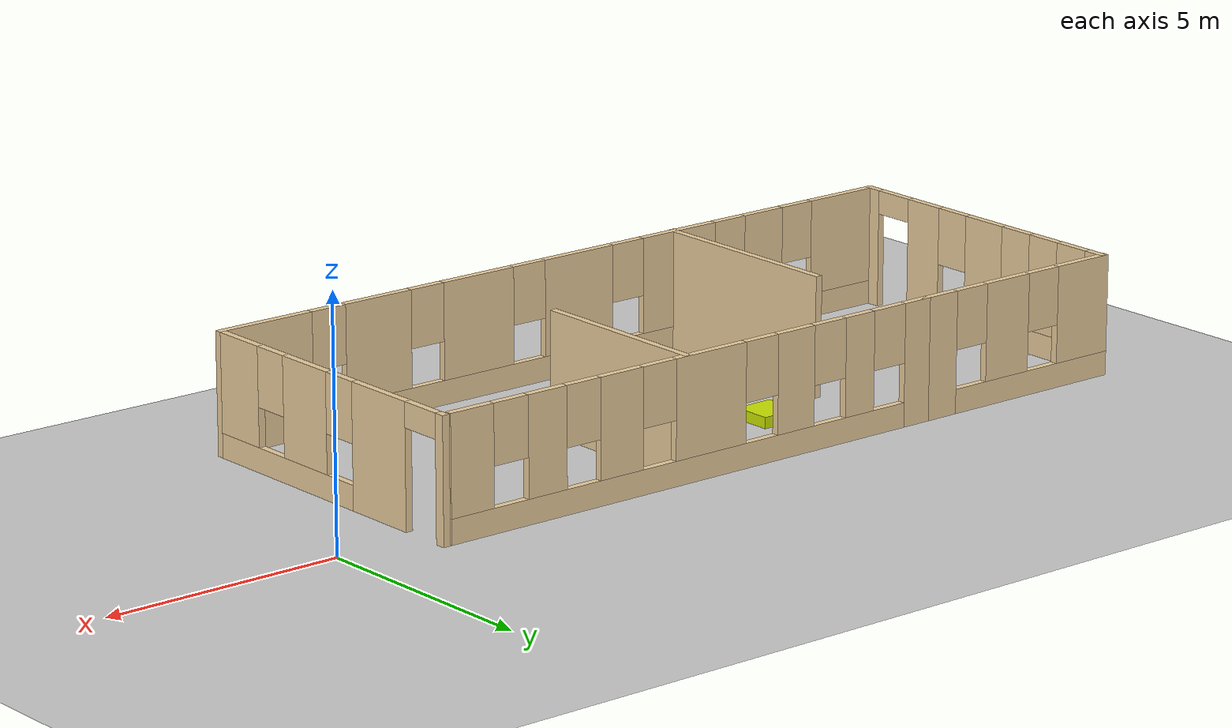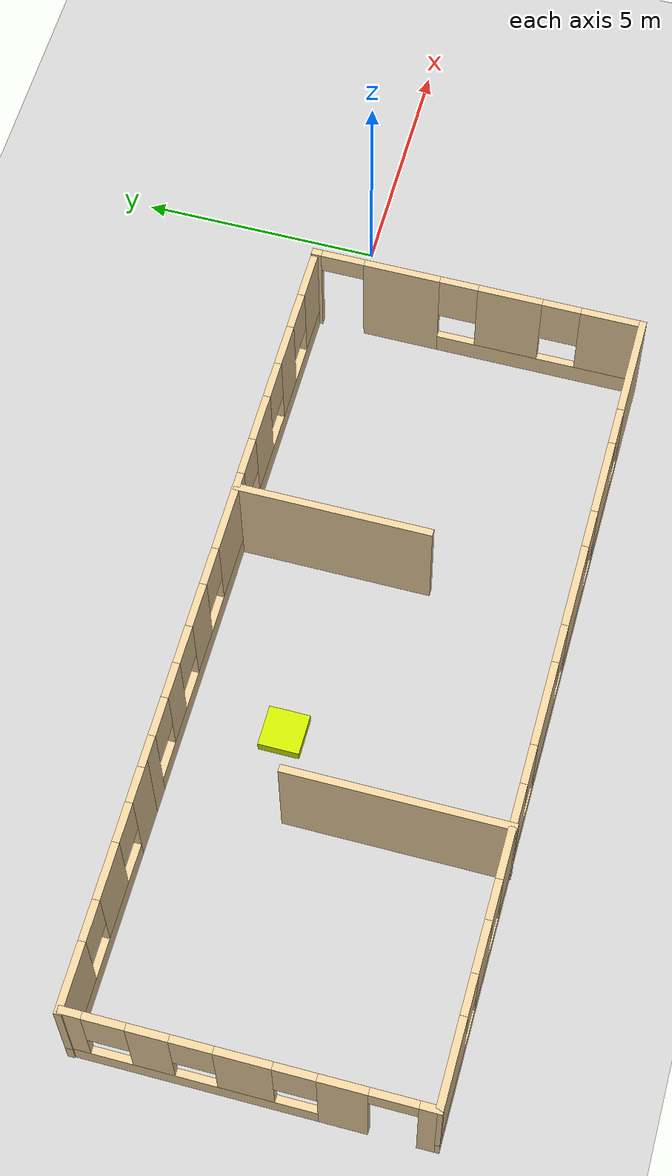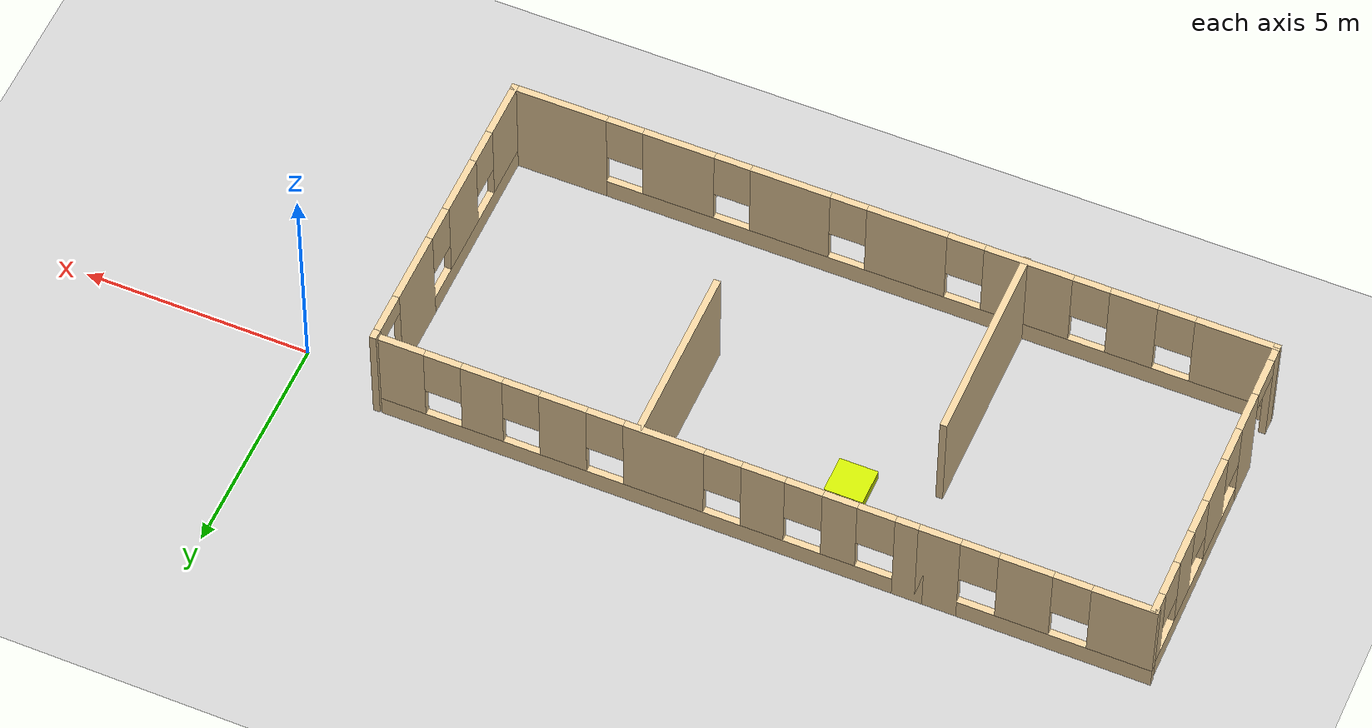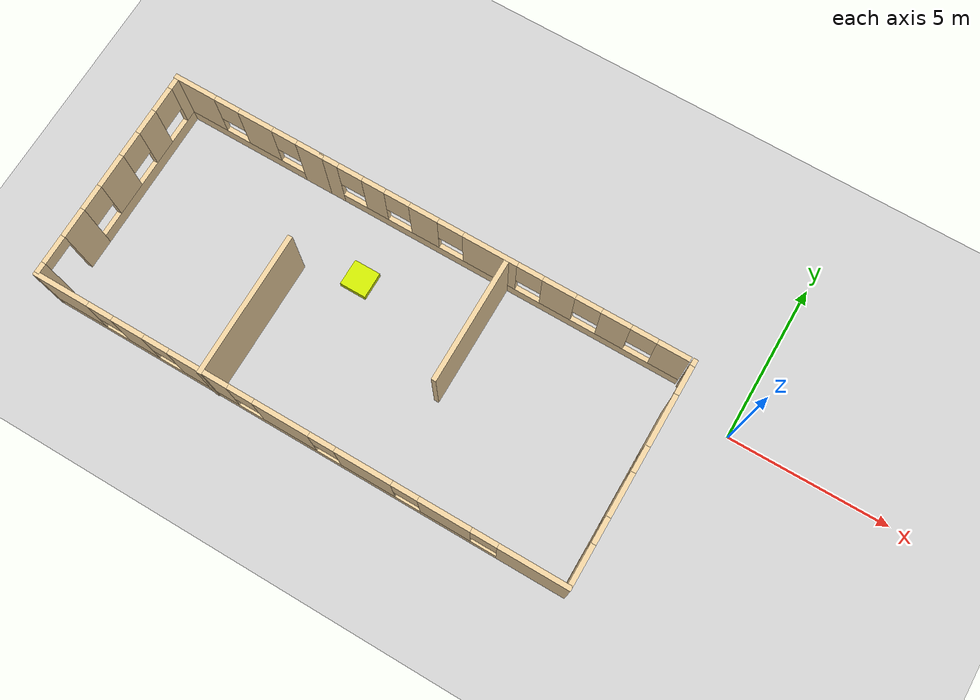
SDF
<sdf version="1.6">
 <world name="default">
  <light name="sun" type="directional">
   <pose>0 0 10 0 -0 0</pose>
   <diffuse>0.8 0.8 0.8 1</diffuse>
   <specular>0.2 0.2 0.2 1</specular>
   <attenuation>
    <range>1000</range>
    <constant>0.9</constant>
    <linear>0.01</linear>
    <quadratic>0.001</quadratic>
   </attenuation>
   <direction>-0.5 0.1 -0.9</direction>
  </light>
  <model name="ground_plane">
   <static>1</static>
   <link name="link">
    <collision name="collision">
     <geometry><plane><normal>0 0 1</normal><size>100 100</size></plane></geometry>
     <surface>
      <contact><collide_bitmask>65535</collide_bitmask></contact>
      <friction><ode><mu>100</mu><mu2>50</mu2></ode></friction>
     </surface>
    </collision>
    <visual name="visual">
     <cast_shadows>0</cast_shadows>
     <geometry><plane><normal>0 0 1</normal><size>100 100</size></plane></geometry>
     <material>
      <script><uri>file://media/materials/scripts/gazebo.material</uri><name>Gazebo/Grey</name></script>
     </material>
    </visual>
   </link>
  </model>
  <gravity>0 0 -9.8</gravity>
  <magnetic_field>6e-06 2.3e-05 -4.2e-05</magnetic_field>
  <atmosphere type="adiabatic"/>
  <physics name="default_physics" default="0" type="ode">
   <max_step_size>0.001</max_step_size>
   <real_time_factor>1</real_time_factor>
   <real_time_update_rate>1000</real_time_update_rate>
  </physics>
  <scene><ambient>0.4 0.4 0.4 1</ambient><background>0.7 0.7 0.7 1</background><shadows>1</shadows></scene>
  <audio><device>default</device></audio>
  <spherical_coordinates>
   <surface_model>EARTH_WGS84</surface_model>
   <latitude_deg>0</latitude_deg>
   <longitude_deg>0</longitude_deg>
   <elevation>0</elevation>
   <heading_deg>0</heading_deg>
  </spherical_coordinates>
  <model name="test_room">
   <pose>-10.2028 -2.74088 0 0 -0 0</pose>
   <link name="Wall_0">
    <pose>2.32553 3.42841 0 0 -0 0</pose>
    <visual name="Wall_0_Visual_0">
     <pose>-5.55003 0 1.25 0 -0 0</pose>
     <geometry><box><size>0.649941 0.15 2.5</size></box></geometry>
     <material>
      <script><uri>file://media/materials/scripts/gazebo.material</uri><name>Gazebo/Grey</name></script>
      <ambient>0.921569 0.807843 0.615686 1</ambient>
     </material>
     <meta><layer>0</layer></meta>
    </visual>
    <collision name="Wall_0_Collision_0">
     <geometry><box><size>0.649941 0.15 2.5</size></box></geometry>
     <pose>-5.55003 0 1.25 0 -0 0</pose>
    </collision>
    <visual name="Wall_0_Visual_1">
     <pose>0.324971 0 0.25 0 -0 0</pose>
     <geometry><box><size>11.1001 0.15 0.5</size></box></geometry>
     <material>
      <script><uri>file://media/materials/scripts/gazebo.material</uri><name>Gazebo/Grey</name></script>
      <ambient>0.921569 0.807843 0.615686 1</ambient>
     </material>
     <meta><layer>0</layer></meta>
    </visual>
    <collision name="Wall_0_Collision_1">
     <geometry><box><size>11.1001 0.15 0.5</size></box></geometry>
     <pose>0.324971 0 0.25 0 -0 0</pose>
    </collision>
    <visual name="Wall_0_Visual_2">
     <pose>-4.05774 0 1.5 0 -0 0</pose>
     <geometry><box><size>0.734631 0.15 2</size></box></geometry>
     <material>
      <script><uri>file://media/materials/scripts/gazebo.material</uri><name>Gazebo/Grey</name></script>
      <ambient>0.921569 0.807843 0.615686 1</ambient>
     </material>
     <meta><layer>0</layer></meta>
    </visual>
    <collision name="Wall_0_Collision_2">
     <geometry><box><size>0.734631 0.15 2</size></box></geometry>
     <pose>-4.05774 0 1.5 0 -0 0</pose>
    </collision>
    <visual name="Wall_0_Visual_3">
     <pose>-2.42833 0 1.5 0 -0 0</pose>
     <geometry><box><size>0.924202 0.15 2</size></box></geometry>
     <material>
      <script><uri>file://media/materials/scripts/gazebo.material</uri><name>Gazebo/Grey</name></script>
      <ambient>0.921569 0.807843 0.615686 1</ambient>
     </material>
     <meta><layer>0</layer></meta>
    </visual>
    <collision name="Wall_0_Collision_3">
     <geometry><box><size>0.924202 0.15 2</size></box></geometry>
     <pose>-2.42833 0 1.5 0 -0 0</pose>
    </collision>
    <visual name="Wall_0_Visual_4">
     <pose>-0.302962 0 1.5 0 -0 0</pose>
     <geometry><box><size>1.72653 0.15 2</size></box></geometry>
     <material>
      <script><uri>file://media/materials/scripts/gazebo.material</uri><name>Gazebo/Grey</name></script>
      <ambient>0.921569 0.807843 0.615686 1</ambient>
     </material>
     <meta><layer>0</layer></meta>
    </visual>
    <collision name="Wall_0_Collision_4">
     <geometry><box><size>1.72653 0.15 2</size></box></geometry>
     <pose>-0.302962 0 1.5 0 -0 0</pose>
    </collision>
    <visual name="Wall_0_Visual_5">
     <pose>1.86994 0 1.5 0 -0 0</pose>
     <geometry><box><size>1.01928 0.15 2</size></box></geometry>
     <material>
      <script><uri>file://media/materials/scripts/gazebo.material</uri><name>Gazebo/Grey</name></script>
      <ambient>0.921569 0.807843 0.615686 1</ambient>
     </material>
     <meta><layer>0</layer></meta>
    </visual>
    <collision name="Wall_0_Collision_5">
     <geometry><box><size>1.01928 0.15 2</size></box></geometry>
     <pose>1.86994 0 1.5 0 -0 0</pose>
    </collision>
    <visual name="Wall_0_Visual_6">
     <pose>3.63237 0 1.5 0 -0 0</pose>
     <geometry><box><size>0.905574 0.15 2</size></box></geometry>
     <material>
      <script><uri>file://media/materials/scripts/gazebo.material</uri><name>Gazebo/Grey</name></script>
      <ambient>0.921569 0.807843 0.615686 1</ambient>
     </material>
     <meta><layer>0</layer></meta>
    </visual>
    <collision name="Wall_0_Collision_6">
     <geometry><box><size>0.905574 0.15 2</size></box></geometry>
     <pose>3.63237 0 1.5 0 -0 0</pose>
    </collision>
    <visual name="Wall_0_Visual_7">
     <pose>5.38008 0 1.5 0 -0 0</pose>
     <geometry><box><size>0.989845 0.15 2</size></box></geometry>
     <material>
      <script><uri>file://media/materials/scripts/gazebo.material</uri><name>Gazebo/Grey</name></script>
      <ambient>0.921569 0.807843 0.615686 1</ambient>
     </material>
     <meta><layer>0</layer></meta>
    </visual>
    <collision name="Wall_0_Collision_7">
     <geometry><box><size>0.989845 0.15 2</size></box></geometry>
     <pose>5.38008 0 1.5 0 -0 0</pose>
    </collision>
    <visual name="Wall_0_Visual_8">
     <pose>-4.82506 0 1.9 0 -0 0</pose>
     <geometry><box><size>0.8 0.15 1.2</size></box></geometry>
     <material>
      <script><uri>file://media/materials/scripts/gazebo.material</uri><name>Gazebo/Grey</name></script>
      <ambient>0.921569 0.807843 0.615686 1</ambient>
     </material>
     <meta><layer>0</layer></meta>
    </visual>
    <collision name="Wall_0_Collision_8">
     <geometry><box><size>0.8 0.15 1.2</size></box></geometry>
     <pose>-4.82506 0 1.9 0 -0 0</pose>
    </collision>
    <visual name="Wall_0_Visual_9">
     <pose>-3.29043 0 1.9 0 -0 0</pose>
     <geometry><box><size>0.8 0.15 1.2</size></box></geometry>
     <material>
      <script><uri>file://media/materials/scripts/gazebo.material</uri><name>Gazebo/Grey</name></script>
      <ambient>0.921569 0.807843 0.615686 1</ambient>
     </material>
     <meta><layer>0</layer></meta>
    </visual>
    <collision name="Wall_0_Collision_9">
     <geometry><box><size>0.8 0.15 1.2</size></box></geometry>
     <pose>-3.29043 0 1.9 0 -0 0</pose>
    </collision>
    <visual name="Wall_0_Visual_10">
     <pose>-1.56623 0 1.9 0 -0 0</pose>
     <geometry><box><size>0.8 0.15 1.2</size></box></geometry>
     <material>
      <script><uri>file://media/materials/scripts/gazebo.material</uri><name>Gazebo/Grey</name></script>
      <ambient>0.921569 0.807843 0.615686 1</ambient>
     </material>
     <meta><layer>0</layer></meta>
    </visual>
    <collision name="Wall_0_Collision_10">
     <geometry><box><size>0.8 0.15 1.2</size></box></geometry>
     <pose>-1.56623 0 1.9 0 -0 0</pose>
    </collision>
    <visual name="Wall_0_Visual_11">
     <pose>0.960302 0 1.9 0 -0 0</pose>
     <geometry><box><size>0.8 0.15 1.2</size></box></geometry>
     <material>
      <script><uri>file://media/materials/scripts/gazebo.material</uri><name>Gazebo/Grey</name></script>
      <ambient>0.921569 0.807843 0.615686 1</ambient>
     </material>
     <meta><layer>0</layer></meta>
    </visual>
    <collision name="Wall_0_Collision_11">
     <geometry><box><size>0.8 0.15 1.2</size></box></geometry>
     <pose>0.960302 0 1.9 0 -0 0</pose>
    </collision>
    <visual name="Wall_0_Visual_12">
     <pose>2.77958 0 1.9 0 -0 0</pose>
     <geometry><box><size>0.8 0.15 1.2</size></box></geometry>
     <material>
      <script><uri>file://media/materials/scripts/gazebo.material</uri><name>Gazebo/Grey</name></script>
      <ambient>0.921569 0.807843 0.615686 1</ambient>
     </material>
     <meta><layer>0</layer></meta>
    </visual>
    <collision name="Wall_0_Collision_12">
     <geometry><box><size>0.8 0.15 1.2</size></box></geometry>
     <pose>2.77958 0 1.9 0 -0 0</pose>
    </collision>
    <visual name="Wall_0_Visual_13">
     <pose>4.48515 0 1.9 0 -0 0</pose>
     <geometry><box><size>0.8 0.15 1.2</size></box></geometry>
     <material>
      <script><uri>file://media/materials/scripts/gazebo.material</uri><name>Gazebo/Grey</name></script>
      <ambient>0.921569 0.807843 0.615686 1</ambient>
     </material>
     <meta><layer>0</layer></meta>
    </visual>
    <collision name="Wall_0_Collision_13">
     <geometry><box><size>0.8 0.15 1.2</size></box></geometry>
     <pose>4.48515 0 1.9 0 -0 0</pose>
    </collision>
   </link>
   <link name="Wall_13">
    <collision name="Wall_13_Collision">
     <geometry><box><size>4.5 0.15 2.5</size></box></geometry>
     <pose>0 0 1.25 0 -0 0</pose>
    </collision>
    <visual name="Wall_13_Visual">
     <pose>0 0 1.25 0 -0 0</pose>
     <geometry><box><size>4.5 0.15 2.5</size></box></geometry>
     <material>
      <script><uri>file://media/materials/scripts/gazebo.material</uri><name>Gazebo/Grey</name></script>
      <ambient>0.921569 0.807843 0.615686 1</ambient>
     </material>
     <meta><layer>0</layer></meta>
    </visual>
    <pose>-2.90976 -1.26041 0 0 -0 1.5708</pose>
   </link>
   <link name="Wall_15">
    <pose>-8.28929 -0.009438 0 0 -0 1.57154</pose>
    <visual name="Wall_15_Visual_0">
     <pose>-3.26804 0 1.25 0 -0 0</pose>
     <geometry><box><size>0.424223 0.15 2.5</size></box></geometry>
     <material>
      <script><uri>file://media/materials/scripts/gazebo.material</uri><name>Gazebo/Grey</name></script>
      <ambient>0.921569 0.807843 0.615686 1</ambient>
     </material>
     <meta><layer>0</layer></meta>
    </visual>
    <collision name="Wall_15_Collision_0">
     <geometry><box><size>0.424223 0.15 2.5</size></box></geometry>
     <pose>-3.26804 0 1.25 0 -0 0</pose>
    </collision>
    <visual name="Wall_15_Visual_1">
     <pose>-1.694 0 1.25 0 -0 0</pose>
     <geometry><box><size>0.923848 0.15 2.5</size></box></geometry>
     <material>
      <script><uri>file://media/materials/scripts/gazebo.material</uri><name>Gazebo/Grey</name></script>
      <ambient>0.921569 0.807843 0.615686 1</ambient>
     </material>
     <meta><layer>0</layer></meta>
    </visual>
    <collision name="Wall_15_Collision_1">
     <geometry><box><size>0.923848 0.15 2.5</size></box></geometry>
     <pose>-1.694 0 1.25 0 -0 0</pose>
    </collision>
    <visual name="Wall_15_Visual_2">
     <pose>1.12403 0 0.25 0 -0 0</pose>
     <geometry><box><size>4.71223 0.15 0.5</size></box></geometry>
     <material>
      <script><uri>file://media/materials/scripts/gazebo.material</uri><name>Gazebo/Grey</name></script>
      <ambient>0.921569 0.807843 0.615686 1</ambient>
     </material>
     <meta><layer>0</layer></meta>
    </visual>
    <collision name="Wall_15_Collision_2">
     <geometry><box><size>4.71223 0.15 0.5</size></box></geometry>
     <pose>1.12403 0 0.25 0 -0 0</pose>
    </collision>
    <visual name="Wall_15_Visual_3">
     <pose>0.100293 0 1.5 0 -0 0</pose>
     <geometry><box><size>1.06474 0.15 2</size></box></geometry>
     <material>
      <script><uri>file://media/materials/scripts/gazebo.material</uri><name>Gazebo/Grey</name></script>
      <ambient>0.921569 0.807843 0.615686 1</ambient>
     </material>
     <meta><layer>0</layer></meta>
    </visual>
    <collision name="Wall_15_Collision_3">
     <geometry><box><size>1.06474 0.15 2</size></box></geometry>
     <pose>0.100293 0 1.5 0 -0 0</pose>
    </collision>
    <visual name="Wall_15_Visual_4">
     <pose>1.8286 0 1.5 0 -0 0</pose>
     <geometry><box><size>0.791869 0.15 2</size></box></geometry>
     <material>
      <script><uri>file://media/materials/scripts/gazebo.material</uri><name>Gazebo/Grey</name></script>
      <ambient>0.921569 0.807843 0.615686 1</ambient>
     </material>
     <meta><layer>0</layer></meta>
    </visual>
    <collision name="Wall_15_Collision_4">
     <geometry><box><size>0.791869 0.15 2</size></box></geometry>
     <pose>1.8286 0 1.5 0 -0 0</pose>
    </collision>
    <visual name="Wall_15_Visual_5">
     <pose>3.25234 0 1.5 0 -0 0</pose>
     <geometry><box><size>0.455616 0.15 2</size></box></geometry>
     <material>
      <script><uri>file://media/materials/scripts/gazebo.material</uri><name>Gazebo/Grey</name></script>
      <ambient>0.921569 0.807843 0.615686 1</ambient>
     </material>
     <meta><layer>0</layer></meta>
    </visual>
    <collision name="Wall_15_Collision_5">
     <geometry><box><size>0.455616 0.15 2</size></box></geometry>
     <pose>3.25234 0 1.5 0 -0 0</pose>
    </collision>
    <visual name="Wall_15_Visual_6">
     <pose>-0.832079 0 1.9 0 -0 0</pose>
     <geometry><box><size>0.8 0.15 1.2</size></box></geometry>
     <material>
      <script><uri>file://media/materials/scripts/gazebo.material</uri><name>Gazebo/Grey</name></script>
      <ambient>0.921569 0.807843 0.615686 1</ambient>
     </material>
     <meta><layer>0</layer></meta>
    </visual>
    <collision name="Wall_15_Collision_6">
     <geometry><box><size>0.8 0.15 1.2</size></box></geometry>
     <pose>-0.832079 0 1.9 0 -0 0</pose>
    </collision>
    <visual name="Wall_15_Visual_7">
     <pose>1.03266 0 1.9 0 -0 0</pose>
     <geometry><box><size>0.8 0.15 1.2</size></box></geometry>
     <material>
      <script><uri>file://media/materials/scripts/gazebo.material</uri><name>Gazebo/Grey</name></script>
      <ambient>0.921569 0.807843 0.615686 1</ambient>
     </material>
     <meta><layer>0</layer></meta>
    </visual>
    <collision name="Wall_15_Collision_7">
     <geometry><box><size>0.8 0.15 1.2</size></box></geometry>
     <pose>1.03266 0 1.9 0 -0 0</pose>
    </collision>
    <visual name="Wall_15_Visual_8">
     <pose>2.62453 0 1.9 0 -0 0</pose>
     <geometry><box><size>0.8 0.15 1.2</size></box></geometry>
     <material>
      <script><uri>file://media/materials/scripts/gazebo.material</uri><name>Gazebo/Grey</name></script>
      <ambient>0.921569 0.807843 0.615686 1</ambient>
     </material>
     <meta><layer>0</layer></meta>
    </visual>
    <collision name="Wall_15_Collision_8">
     <geometry><box><size>0.8 0.15 1.2</size></box></geometry>
     <pose>2.62453 0 1.9 0 -0 0</pose>
    </collision>
    <visual name="Wall_15_Visual_9">
     <pose>-2.60593 0 2.25 0 -0 0</pose>
     <geometry><box><size>0.9 0.15 0.5</size></box></geometry>
     <material>
      <script><uri>file://media/materials/scripts/gazebo.material</uri><name>Gazebo/Grey</name></script>
      <ambient>0.921569 0.807843 0.615686 1</ambient>
     </material>
     <meta><layer>0</layer></meta>
    </visual>
    <collision name="Wall_15_Collision_9">
     <geometry><box><size>0.9 0.15 0.5</size></box></geometry>
     <pose>-2.60593 0 2.25 0 -0 0</pose>
    </collision>
   </link>
   <link name="Wall_17">
    <pose>-5.88823 3.42841 0 0 -0 3.14159</pose>
    <visual name="Wall_17_Visual_0">
     <pose>-2.05736 0 1.25 0 -0 0</pose>
     <geometry><box><size>0.885289 0.15 2.5</size></box></geometry>
     <material>
      <script><uri>file://media/materials/scripts/gazebo.material</uri><name>Gazebo/Grey</name></script>
      <ambient>0.921569 0.807843 0.615686 1</ambient>
     </material>
     <meta><layer>0</layer></meta>
    </visual>
    <collision name="Wall_17_Collision_0">
     <geometry><box><size>0.885289 0.15 2.5</size></box></geometry>
     <pose>-2.05736 0 1.25 0 -0 0</pose>
    </collision>
    <visual name="Wall_17_Visual_1">
     <pose>0.442644 0 0.25 0 -0 0</pose>
     <geometry><box><size>4.11471 0.15 0.5</size></box></geometry>
     <material>
      <script><uri>file://media/materials/scripts/gazebo.material</uri><name>Gazebo/Grey</name></script>
      <ambient>0.921569 0.807843 0.615686 1</ambient>
     </material>
     <meta><layer>0</layer></meta>
    </visual>
    <collision name="Wall_17_Collision_1">
     <geometry><box><size>4.11471 0.15 0.5</size></box></geometry>
     <pose>0.442644 0 0.25 0 -0 0</pose>
    </collision>
    <visual name="Wall_17_Visual_2">
     <pose>-0.248219 0 1.5 0 -0 0</pose>
     <geometry><box><size>1.13298 0.15 2</size></box></geometry>
     <material>
      <script><uri>file://media/materials/scripts/gazebo.material</uri><name>Gazebo/Grey</name></script>
      <ambient>0.921569 0.807843 0.615686 1</ambient>
     </material>
     <meta><layer>0</layer></meta>
    </visual>
    <collision name="Wall_17_Collision_2">
     <geometry><box><size>1.13298 0.15 2</size></box></geometry>
     <pose>-0.248219 0 1.5 0 -0 0</pose>
    </collision>
    <visual name="Wall_17_Visual_3">
     <pose>1.80914 0 1.5 0 -0 0</pose>
     <geometry><box><size>1.38173 0.15 2</size></box></geometry>
     <material>
      <script><uri>file://media/materials/scripts/gazebo.material</uri><name>Gazebo/Grey</name></script>
      <ambient>0.921569 0.807843 0.615686 1</ambient>
     </material>
     <meta><layer>0</layer></meta>
    </visual>
    <collision name="Wall_17_Collision_3">
     <geometry><box><size>1.38173 0.15 2</size></box></geometry>
     <pose>1.80914 0 1.5 0 -0 0</pose>
    </collision>
    <visual name="Wall_17_Visual_4">
     <pose>-1.21471 0 1.9 0 -0 0</pose>
     <geometry><box><size>0.8 0.15 1.2</size></box></geometry>
     <material>
      <script><uri>file://media/materials/scripts/gazebo.material</uri><name>Gazebo/Grey</name></script>
      <ambient>0.921569 0.807843 0.615686 1</ambient>
     </material>
     <meta><layer>0</layer></meta>
    </visual>
    <collision name="Wall_17_Collision_4">
     <geometry><box><size>0.8 0.15 1.2</size></box></geometry>
     <pose>-1.21471 0 1.9 0 -0 0</pose>
    </collision>
    <visual name="Wall_17_Visual_5">
     <pose>0.718273 0 1.9 0 -0 0</pose>
     <geometry><box><size>0.8 0.15 1.2</size></box></geometry>
     <material>
      <script><uri>file://media/materials/scripts/gazebo.material</uri><name>Gazebo/Grey</name></script>
      <ambient>0.921569 0.807843 0.615686 1</ambient>
     </material>
     <meta><layer>0</layer></meta>
    </visual>
    <collision name="Wall_17_Collision_5">
     <geometry><box><size>0.8 0.15 1.2</size></box></geometry>
     <pose>0.718273 0 1.9 0 -0 0</pose>
    </collision>
   </link>
   <link name="Wall_2">
    <collision name="Wall_2_Collision">
     <geometry><box><size>4 0.15 2.5</size></box></geometry>
     <pose>0 0 1.25 0 -0 0</pose>
    </collision>
    <visual name="Wall_2_Visual">
     <pose>0 0 1.25 0 -0 0</pose>
     <geometry><box><size>4 0.15 2.5</size></box></geometry>
     <material>
      <script><uri>file://media/materials/scripts/gazebo.material</uri><name>Gazebo/Grey</name></script>
      <ambient>0.921569 0.807843 0.615686 1</ambient>
     </material>
     <meta><layer>0</layer></meta>
    </visual>
    <pose>2.57123 1.47341 0 0 -0 -1.5708</pose>
   </link>
   <link name="Wall_6">
    <pose>8.31323 0.010414 0 0 -0 -1.5708</pose>
    <visual name="Wall_6_Visual_0">
     <pose>-3.39106 0 1.25 0 -0 0</pose>
     <geometry><box><size>0.217873 0.15 2.5</size></box></geometry>
     <material>
      <script><uri>file://media/materials/scripts/gazebo.material</uri><name>Gazebo/Grey</name></script>
      <ambient>0.921569 0.807843 0.615686 1</ambient>
     </material>
     <meta><layer>0</layer></meta>
    </visual>
    <collision name="Wall_6_Collision_0">
     <geometry><box><size>0.217873 0.15 2.5</size></box></geometry>
     <pose>-3.39106 0 1.25 0 -0 0</pose>
    </collision>
    <visual name="Wall_6_Visual_1">
     <pose>-1.58214 0 1.25 0 -0 0</pose>
     <geometry><box><size>1.59997 0.15 2.5</size></box></geometry>
     <material>
      <script><uri>file://media/materials/scripts/gazebo.material</uri><name>Gazebo/Grey</name></script>
      <ambient>0.921569 0.807843 0.615686 1</ambient>
     </material>
     <meta><layer>0</layer></meta>
    </visual>
    <collision name="Wall_6_Collision_1">
     <geometry><box><size>1.59997 0.15 2.5</size></box></geometry>
     <pose>-1.58214 0 1.25 0 -0 0</pose>
    </collision>
    <visual name="Wall_6_Visual_2">
     <pose>1.35892 0 0.25 0 -0 0</pose>
     <geometry><box><size>4.28215 0.15 0.5</size></box></geometry>
     <material>
      <script><uri>file://media/materials/scripts/gazebo.material</uri><name>Gazebo/Grey</name></script>
      <ambient>0.921569 0.807843 0.615686 1</ambient>
     </material>
     <meta><layer>0</layer></meta>
    </visual>
    <collision name="Wall_6_Collision_2">
     <geometry><box><size>4.28215 0.15 0.5</size></box></geometry>
     <pose>1.35892 0 0.25 0 -0 0</pose>
    </collision>
    <visual name="Wall_6_Visual_3">
     <pose>0.688019 0 1.5 0 -0 0</pose>
     <geometry><box><size>1.34034 0.15 2</size></box></geometry>
     <material>
      <script><uri>file://media/materials/scripts/gazebo.material</uri><name>Gazebo/Grey</name></script>
      <ambient>0.921569 0.807843 0.615686 1</ambient>
     </material>
     <meta><layer>0</layer></meta>
    </visual>
    <collision name="Wall_6_Collision_3">
     <geometry><box><size>1.34034 0.15 2</size></box></geometry>
     <pose>0.688019 0 1.5 0 -0 0</pose>
    </collision>
    <visual name="Wall_6_Visual_4">
     <pose>2.82909 0 1.5 0 -0 0</pose>
     <geometry><box><size>1.34181 0.15 2</size></box></geometry>
     <material>
      <script><uri>file://media/materials/scripts/gazebo.material</uri><name>Gazebo/Grey</name></script>
      <ambient>0.921569 0.807843 0.615686 1</ambient>
     </material>
     <meta><layer>0</layer></meta>
    </visual>
    <collision name="Wall_6_Collision_4">
     <geometry><box><size>1.34181 0.15 2</size></box></geometry>
     <pose>2.82909 0 1.5 0 -0 0</pose>
    </collision>
    <visual name="Wall_6_Visual_5">
     <pose>-0.382152 0 1.9 0 -0 0</pose>
     <geometry><box><size>0.8 0.15 1.2</size></box></geometry>
     <material>
      <script><uri>file://media/materials/scripts/gazebo.material</uri><name>Gazebo/Grey</name></script>
      <ambient>0.921569 0.807843 0.615686 1</ambient>
     </material>
     <meta><layer>0</layer></meta>
    </visual>
    <collision name="Wall_6_Collision_5">
     <geometry><box><size>0.8 0.15 1.2</size></box></geometry>
     <pose>-0.382152 0 1.9 0 -0 0</pose>
    </collision>
    <visual name="Wall_6_Visual_6">
     <pose>1.75819 0 1.9 0 -0 0</pose>
     <geometry><box><size>0.8 0.15 1.2</size></box></geometry>
     <material>
      <script><uri>file://media/materials/scripts/gazebo.material</uri><name>Gazebo/Grey</name></script>
      <ambient>0.921569 0.807843 0.615686 1</ambient>
     </material>
     <meta><layer>0</layer></meta>
    </visual>
    <collision name="Wall_6_Collision_6">
     <geometry><box><size>0.8 0.15 1.2</size></box></geometry>
     <pose>1.75819 0 1.9 0 -0 0</pose>
    </collision>
    <visual name="Wall_6_Visual_7">
     <pose>-2.83213 0 2.25 0 -0 0</pose>
     <geometry><box><size>0.9 0.15 0.5</size></box></geometry>
     <material>
      <script><uri>file://media/materials/scripts/gazebo.material</uri><name>Gazebo/Grey</name></script>
      <ambient>0.921569 0.807843 0.615686 1</ambient>
     </material>
     <meta><layer>0</layer></meta>
    </visual>
    <collision name="Wall_6_Collision_7">
     <geometry><box><size>0.9 0.15 0.5</size></box></geometry>
     <pose>-2.83213 0 2.25 0 -0 0</pose>
    </collision>
   </link>
   <link name="Wall_7">
    <pose>0.013229 -3.41459 0 0 -0 3.14159</pose>
    <visual name="Wall_7_Visual_0">
     <pose>-7.2973 0 1.25 0 -0 0</pose>
     <geometry><box><size>2.15541 0.15 2.5</size></box></geometry>
     <material>
      <script><uri>file://media/materials/scripts/gazebo.material</uri><name>Gazebo/Grey</name></script>
      <ambient>0.921569 0.807843 0.615686 1</ambient>
     </material>
     <meta><layer>0</layer></meta>
    </visual>
    <collision name="Wall_7_Collision_0">
     <geometry><box><size>2.15541 0.15 2.5</size></box></geometry>
     <pose>-7.2973 0 1.25 0 -0 0</pose>
    </collision>
    <visual name="Wall_7_Visual_1">
     <pose>1.0777 0 0.25 0 -0 0</pose>
     <geometry><box><size>14.5946 0.15 0.5</size></box></geometry>
     <material>
      <script><uri>file://media/materials/scripts/gazebo.material</uri><name>Gazebo/Grey</name></script>
      <ambient>0.921569 0.807843 0.615686 1</ambient>
     </material>
     <meta><layer>0</layer></meta>
    </visual>
    <collision name="Wall_7_Collision_1">
     <geometry><box><size>14.5946 0.15 0.5</size></box></geometry>
     <pose>1.0777 0 0.25 0 -0 0</pose>
    </collision>
    <visual name="Wall_7_Visual_2">
     <pose>-4.62569 0 1.5 0 -0 0</pose>
     <geometry><box><size>1.5878 0.15 2</size></box></geometry>
     <material>
      <script><uri>file://media/materials/scripts/gazebo.material</uri><name>Gazebo/Grey</name></script>
      <ambient>0.921569 0.807843 0.615686 1</ambient>
     </material>
     <meta><layer>0</layer></meta>
    </visual>
    <collision name="Wall_7_Collision_2">
     <geometry><box><size>1.5878 0.15 2</size></box></geometry>
     <pose>-4.62569 0 1.5 0 -0 0</pose>
    </collision>
    <visual name="Wall_7_Visual_3">
     <pose>-2.15829 0 1.5 0 -0 0</pose>
     <geometry><box><size>1.74699 0.15 2</size></box></geometry>
     <material>
      <script><uri>file://media/materials/scripts/gazebo.material</uri><name>Gazebo/Grey</name></script>
      <ambient>0.921569 0.807843 0.615686 1</ambient>
     </material>
     <meta><layer>0</layer></meta>
    </visual>
    <collision name="Wall_7_Collision_3">
     <geometry><box><size>1.74699 0.15 2</size></box></geometry>
     <pose>-2.15829 0 1.5 0 -0 0</pose>
    </collision>
    <visual name="Wall_7_Visual_4">
     <pose>0.388698 0 1.5 0 -0 0</pose>
     <geometry><box><size>1.74699 0.15 2</size></box></geometry>
     <material>
      <script><uri>file://media/materials/scripts/gazebo.material</uri><name>Gazebo/Grey</name></script>
      <ambient>0.921569 0.807843 0.615686 1</ambient>
     </material>
     <meta><layer>0</layer></meta>
    </visual>
    <collision name="Wall_7_Collision_4">
     <geometry><box><size>1.74699 0.15 2</size></box></geometry>
     <pose>0.388698 0 1.5 0 -0 0</pose>
    </collision>
    <visual name="Wall_7_Visual_5">
     <pose>3.01528 0 1.5 0 -0 0</pose>
     <geometry><box><size>1.90618 0.15 2</size></box></geometry>
     <material>
      <script><uri>file://media/materials/scripts/gazebo.material</uri><name>Gazebo/Grey</name></script>
      <ambient>0.921569 0.807843 0.615686 1</ambient>
     </material>
     <meta><layer>0</layer></meta>
    </visual>
    <collision name="Wall_7_Collision_5">
     <geometry><box><size>1.90618 0.15 2</size></box></geometry>
     <pose>3.01528 0 1.5 0 -0 0</pose>
    </collision>
    <visual name="Wall_7_Visual_6">
     <pose>5.27801 0 1.5 0 -0 0</pose>
     <geometry><box><size>1.01928 0.15 2</size></box></geometry>
     <material>
      <script><uri>file://media/materials/scripts/gazebo.material</uri><name>Gazebo/Grey</name></script>
      <ambient>0.921569 0.807843 0.615686 1</ambient>
     </material>
     <meta><layer>0</layer></meta>
    </visual>
    <collision name="Wall_7_Collision_6">
     <geometry><box><size>1.01928 0.15 2</size></box></geometry>
     <pose>5.27801 0 1.5 0 -0 0</pose>
    </collision>
    <visual name="Wall_7_Visual_7">
     <pose>7.48133 0 1.5 0 -0 0</pose>
     <geometry><box><size>1.78735 0.15 2</size></box></geometry>
     <material>
      <script><uri>file://media/materials/scripts/gazebo.material</uri><name>Gazebo/Grey</name></script>
      <ambient>0.921569 0.807843 0.615686 1</ambient>
     </material>
     <meta><layer>0</layer></meta>
    </visual>
    <collision name="Wall_7_Collision_7">
     <geometry><box><size>1.78735 0.15 2</size></box></geometry>
     <pose>7.48133 0 1.5 0 -0 0</pose>
    </collision>
    <visual name="Wall_7_Visual_8">
     <pose>-5.81959 0 1.9 0 -0 0</pose>
     <geometry><box><size>0.8 0.15 1.2</size></box></geometry>
     <material>
      <script><uri>file://media/materials/scripts/gazebo.material</uri><name>Gazebo/Grey</name></script>
      <ambient>0.921569 0.807843 0.615686 1</ambient>
     </material>
     <meta><layer>0</layer></meta>
    </visual>
    <collision name="Wall_7_Collision_8">
     <geometry><box><size>0.8 0.15 1.2</size></box></geometry>
     <pose>-5.81959 0 1.9 0 -0 0</pose>
    </collision>
    <visual name="Wall_7_Visual_9">
     <pose>-3.43179 0 1.9 0 -0 0</pose>
     <geometry><box><size>0.8 0.15 1.2</size></box></geometry>
     <material>
      <script><uri>file://media/materials/scripts/gazebo.material</uri><name>Gazebo/Grey</name></script>
      <ambient>0.921569 0.807843 0.615686 1</ambient>
     </material>
     <meta><layer>0</layer></meta>
    </visual>
    <collision name="Wall_7_Collision_9">
     <geometry><box><size>0.8 0.15 1.2</size></box></geometry>
     <pose>-3.43179 0 1.9 0 -0 0</pose>
    </collision>
    <visual name="Wall_7_Visual_10">
     <pose>-0.884797 0 1.9 0 -0 0</pose>
     <geometry><box><size>0.8 0.15 1.2</size></box></geometry>
     <material>
      <script><uri>file://media/materials/scripts/gazebo.material</uri><name>Gazebo/Grey</name></script>
      <ambient>0.921569 0.807843 0.615686 1</ambient>
     </material>
     <meta><layer>0</layer></meta>
    </visual>
    <collision name="Wall_7_Collision_10">
     <geometry><box><size>0.8 0.15 1.2</size></box></geometry>
     <pose>-0.884797 0 1.9 0 -0 0</pose>
    </collision>
    <visual name="Wall_7_Visual_11">
     <pose>1.66219 0 1.9 0 -0 0</pose>
     <geometry><box><size>0.8 0.15 1.2</size></box></geometry>
     <material>
      <script><uri>file://media/materials/scripts/gazebo.material</uri><name>Gazebo/Grey</name></script>
      <ambient>0.921569 0.807843 0.615686 1</ambient>
     </material>
     <meta><layer>0</layer></meta>
    </visual>
    <collision name="Wall_7_Collision_11">
     <geometry><box><size>0.8 0.15 1.2</size></box></geometry>
     <pose>1.66219 0 1.9 0 -0 0</pose>
    </collision>
    <visual name="Wall_7_Visual_12">
     <pose>4.36837 0 1.9 0 -0 0</pose>
     <geometry><box><size>0.8 0.15 1.2</size></box></geometry>
     <material>
      <script><uri>file://media/materials/scripts/gazebo.material</uri><name>Gazebo/Grey</name></script>
      <ambient>0.921569 0.807843 0.615686 1</ambient>
     </material>
     <meta><layer>0</layer></meta>
    </visual>
    <collision name="Wall_7_Collision_12">
     <geometry><box><size>0.8 0.15 1.2</size></box></geometry>
     <pose>4.36837 0 1.9 0 -0 0</pose>
    </collision>
    <visual name="Wall_7_Visual_13">
     <pose>6.18765 0 1.9 0 -0 0</pose>
     <geometry><box><size>0.8 0.15 1.2</size></box></geometry>
     <material>
      <script><uri>file://media/materials/scripts/gazebo.material</uri><name>Gazebo/Grey</name></script>
      <ambient>0.921569 0.807843 0.615686 1</ambient>
     </material>
     <meta><layer>0</layer></meta>
    </visual>
    <collision name="Wall_7_Collision_13">
     <geometry><box><size>0.8 0.15 1.2</size></box></geometry>
     <pose>6.18765 0 1.9 0 -0 0</pose>
    </collision>
   </link>
   <static>1</static>
  </model>
  <model name="box">
   <link name="link_0">
    <inertial>
     <mass>1</mass>
     <inertia>
      <ixx>0.166667</ixx>
      <ixy>0</ixy>
      <ixz>0</ixz>
      <iyy>0.166667</iyy>
      <iyz>0</iyz>
      <izz>0.166667</izz>
     </inertia>
    </inertial>
    <visual name="visual">
     <geometry><box><size>0.84216 0.831576 0.231934</size></box></geometry>
     <material>
      <lighting>1</lighting>
      <script><uri>file://media/materials/scripts/gazebo.material</uri><name>Gazebo/Grey</name></script>
      <shader type="vertex"><normal_map>__default__</normal_map></shader>
      <ambient>0.3 0.3 0.3 1</ambient>
      <diffuse>0.8 0.9 0 1</diffuse>
      <specular>0.01 0.01 0.01 1</specular>
      <emissive>0 0 0 1</emissive>
     </material>
    </visual>
    <collision name="collision">
     <geometry><box><size>0.84216 0.831576 0.231934</size></box></geometry>
     <surface>
      <friction>
       <ode><mu>1</mu><mu2>1</mu2><fdir1>0 0 0</fdir1><slip1>0</slip1><slip2>0</slip2></ode>
       <torsional>
        <coefficient>1</coefficient>
        <patch_radius>0</patch_radius>
        <surface_radius>0</surface_radius>
        <use_patch_radius>1</use_patch_radius>
        <ode><slip>0</slip></ode>
       </torsional>
      </friction>
      <bounce><restitution_coefficient>0</restitution_coefficient><threshold>1e+06</threshold></bounce>
      <contact>
       <collide_without_contact>0</collide_without_contact>
       <collide_without_contact_bitmask>1</collide_without_contact_bitmask>
       <collide_bitmask>1</collide_bitmask>
       <ode>
        <soft_cfm>0</soft_cfm>
        <soft_erp>0.2</soft_erp>
        <kp>1e+13</kp>
        <kd>1</kd>
        <max_vel>0.01</max_vel>
        <min_depth>0</min_depth>
       </ode>
       <bullet>
        <split_impulse>1</split_impulse>
        <split_impulse_penetration_threshold>-0.01</split_impulse_penetration_threshold>
        <soft_cfm>0</soft_cfm>
        <soft_erp>0.2</soft_erp>
        <kp>1e+13</kp>
        <kd>1</kd>
       </bullet>
      </contact>
     </surface>
    </collision>
   </link>
   <static>0</static>
   <pose>-11.3958 -1.29354 0.115967 0 -0 0</pose>
  </model>
 </world>
</sdf>
